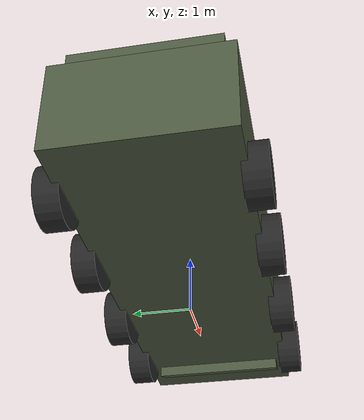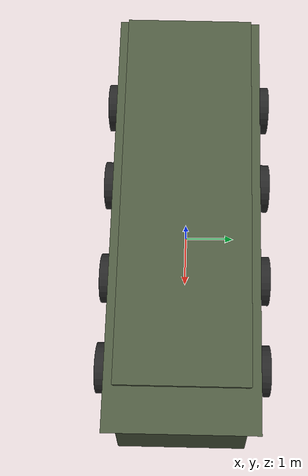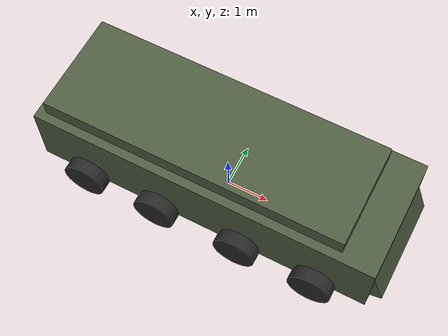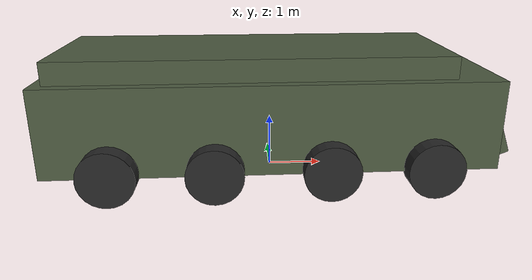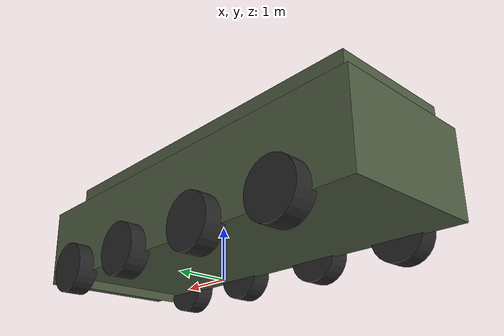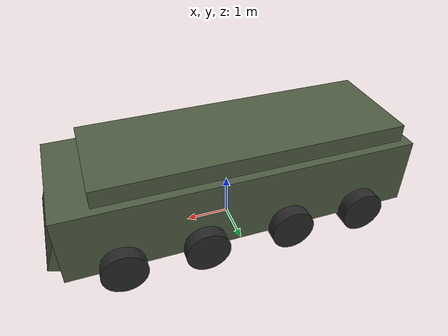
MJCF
<mujoco>
  <!-- APC - Armored Personnel Carrier (primitive approximation) -->
  <compiler angle="degree"/>

  <asset>
    <material name="apc_body" rgba="0.3 0.35 0.25 1"/>
    <material name="apc_wheel" rgba="0.15 0.15 0.15 1"/>
    <material name="apc_window" rgba="0.1 0.2 0.3 0.8"/>
  </asset>

  <worldbody>
    <body name="apc_hull">
      <freejoint name="apc_root"/>
      <inertial pos="0 0 0.8" mass="20000" diaginertia="20000 40000 15000"/>

      <!-- Main hull -->
      <geom name="hull" type="box" size="4.0 1.4 0.8" pos="0 0 1.2" material="apc_body"/>
      <geom name="hull_top" type="box" size="3.5 1.2 0.4" pos="-0.3 0 2.0" material="apc_body"/>
      <geom name="hull_front" type="box" size="0.6 1.2 0.6" pos="3.5 0 1.0" euler="0 -20 0" material="apc_body"/>

      <!-- Windows -->
      <geom name="window_front" type="box" size="0.02 0.8 0.3" pos="3.8 0 1.5" euler="0 -20 0" material="apc_window"/>

      <!-- 8 wheels (4 per side) -->
      <body name="wheel_1l" pos="2.8 1.5 0.5">
        <joint name="axle_1l" type="hinge" axis="0 1 0"/>
        <geom type="cylinder" size="0.5 0.2" euler="90 0 0" material="apc_wheel" mass="100"/>
      </body>
      <body name="wheel_2l" pos="1.0 1.5 0.5">
        <joint name="axle_2l" type="hinge" axis="0 1 0"/>
        <geom type="cylinder" size="0.5 0.2" euler="90 0 0" material="apc_wheel" mass="100"/>
      </body>
      <body name="wheel_3l" pos="-1.0 1.5 0.5">
        <joint name="axle_3l" type="hinge" axis="0 1 0"/>
        <geom type="cylinder" size="0.5 0.2" euler="90 0 0" material="apc_wheel" mass="100"/>
      </body>
      <body name="wheel_4l" pos="-2.8 1.5 0.5">
        <joint name="axle_4l" type="hinge" axis="0 1 0"/>
        <geom type="cylinder" size="0.5 0.2" euler="90 0 0" material="apc_wheel" mass="100"/>
      </body>

      <body name="wheel_1r" pos="2.8 -1.5 0.5">
        <joint name="axle_1r" type="hinge" axis="0 1 0"/>
        <geom type="cylinder" size="0.5 0.2" euler="90 0 0" material="apc_wheel" mass="100"/>
      </body>
      <body name="wheel_2r" pos="1.0 -1.5 0.5">
        <joint name="axle_2r" type="hinge" axis="0 1 0"/>
        <geom type="cylinder" size="0.5 0.2" euler="90 0 0" material="apc_wheel" mass="100"/>
      </body>
      <body name="wheel_3r" pos="-1.0 -1.5 0.5">
        <joint name="axle_3r" type="hinge" axis="0 1 0"/>
        <geom type="cylinder" size="0.5 0.2" euler="90 0 0" material="apc_wheel" mass="100"/>
      </body>
      <body name="wheel_4r" pos="-2.8 -1.5 0.5">
        <joint name="axle_4r" type="hinge" axis="0 1 0"/>
        <geom type="cylinder" size="0.5 0.2" euler="90 0 0" material="apc_wheel" mass="100"/>
      </body>

      <camera name="driver_cam" pos="3.5 0 1.8" euler="0 -10 0" fovy="70"/>
      <site name="imu_site" pos="0 0 1.5" size="0.05"/>
    </body>
  </worldbody>

  <actuator>
    <velocity name="motor_rl" joint="axle_4l" kv="1000"/>
    <velocity name="motor_rr" joint="axle_4r" kv="1000"/>
  </actuator>

  <sensor>
    <accelerometer name="apc_imu" site="imu_site"/>
    <gyro name="apc_gyro" site="imu_site"/>
  </sensor>
</mujoco>
